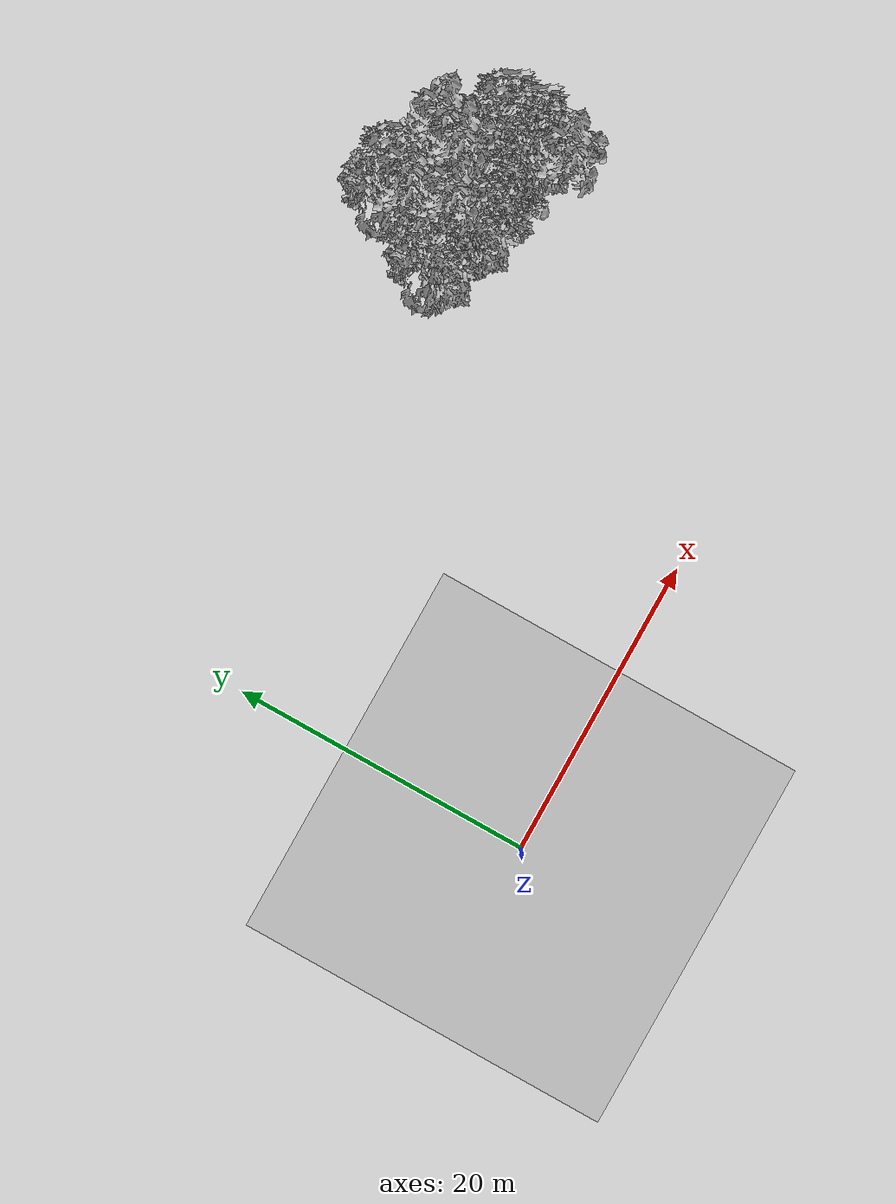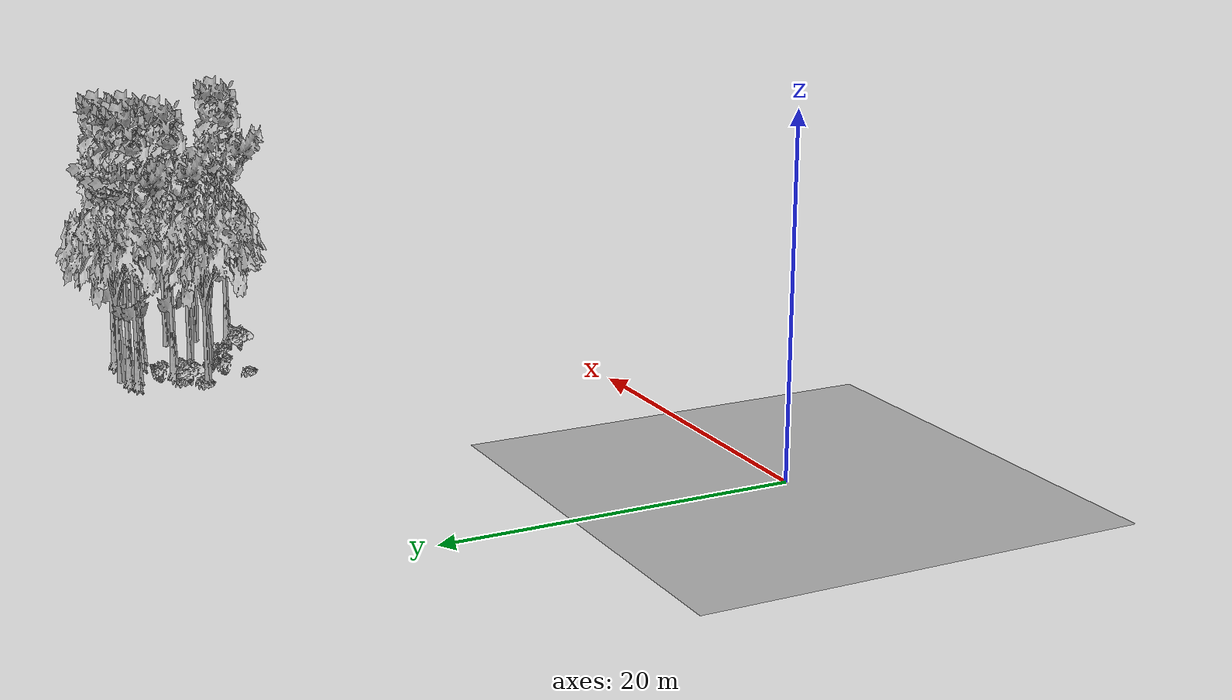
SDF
<sdf version="1.7">
 <world name="default">
  <model name="ground_plane">
   <static>1</static>
   <link name="link">
    <collision name="collision">
     <pose>-50 0 0 0 -0 0</pose>
     <geometry><plane><normal>0 0 1</normal><size>80 80</size></plane></geometry>
     <surface><contact><ode><min_depth>0.01</min_depth><max_vel>0</max_vel></ode></contact></surface>
    </collision>
    <visual name="grass">
     <cast_shadows>0</cast_shadows>
     <geometry>
      <mesh>
       <scale>0.46714285714285714 0.46714285714285714 0.1</scale>
       <uri>file://grass_plane/meshes/grass_plane.dae</uri>
      </mesh>
     </geometry>
    </visual>
   </link>
  </model>
  <model name="Tree 83">
   <static>1</static>
   <pose>32.19585348661583 27.203462785655944 0 1.57079 -0 0</pose>
   <link name="link">
    <collision name="collision">
     <geometry><mesh><scale>3.5 5 3.5</scale><uri>model://tree_2/meshes/tree_2.obj</uri></mesh></geometry>
    </collision>
    <visual name="visual">
     <geometry><mesh><scale>3.5 5 3.5</scale><uri>model://tree_2/meshes/tree_2.obj</uri></mesh></geometry>
    </visual>
   </link>
  </model>
  <model name="Tree 93">
   <static>1</static>
   <pose>29.53064979839708 22.51079197156176 0 1.57079 -0 0</pose>
   <link name="link">
    <collision name="collision">
     <geometry><mesh><scale>3.5 5 3.5</scale><uri>model://tree_2/meshes/tree_2.obj</uri></mesh></geometry>
    </collision>
    <visual name="visual">
     <geometry><mesh><scale>3.5 5 3.5</scale><uri>model://tree_2/meshes/tree_2.obj</uri></mesh></geometry>
    </visual>
   </link>
  </model>
  <model name="Tree 101">
   <static>1</static>
   <pose>32.56744201294197 26.58261140195208 0 1.57079 -0 0</pose>
   <link name="link">
    <collision name="collision">
     <geometry><mesh><scale>3.5 5 3.5</scale><uri>model://tree_9/meshes/tree_9.obj</uri></mesh></geometry>
    </collision>
    <visual name="visual">
     <geometry><mesh><scale>3.5 5 3.5</scale><uri>model://tree_9/meshes/tree_9.obj</uri></mesh></geometry>
    </visual>
   </link>
  </model>
  <model name="Tree 120">
   <static>1</static>
   <pose>31.903621425664042 26.2312704462461 0 1.57079 -0 0</pose>
   <link name="link">
    <collision name="collision">
     <geometry><mesh><scale>3.5 5 3.5</scale><uri>model://tree_9/meshes/tree_9.obj</uri></mesh></geometry>
    </collision>
    <visual name="visual">
     <geometry><mesh><scale>3.5 5 3.5</scale><uri>model://tree_9/meshes/tree_9.obj</uri></mesh></geometry>
    </visual>
   </link>
  </model>
  <model name="Tree 183">
   <static>1</static>
   <pose>36.63798282781558 26.455458530056262 0 1.57079 -0 0</pose>
   <link name="link">
    <collision name="collision">
     <geometry><mesh><scale>3.5 5 3.5</scale><uri>model://tree_9/meshes/tree_9.obj</uri></mesh></geometry>
    </collision>
    <visual name="visual">
     <geometry><mesh><scale>3.5 5 3.5</scale><uri>model://tree_9/meshes/tree_9.obj</uri></mesh></geometry>
    </visual>
   </link>
  </model>
  <model name="Tree 214">
   <static>1</static>
   <pose>32.902745397415984 23.70487769245596 0 1.57079 -0 0</pose>
   <link name="link">
    <collision name="collision">
     <geometry><mesh><scale>3.5 5 3.5</scale><uri>model://tree_9/meshes/tree_9.obj</uri></mesh></geometry>
    </collision>
    <visual name="visual">
     <geometry><mesh><scale>3.5 5 3.5</scale><uri>model://tree_9/meshes/tree_9.obj</uri></mesh></geometry>
    </visual>
   </link>
  </model>
  <model name="Tree 307">
   <static>1</static>
   <pose>38.49134180322396 18.54290691175305 0 1.57079 -0 0</pose>
   <link name="link">
    <collision name="collision">
     <geometry><mesh><scale>3.5 5 3.5</scale><uri>model://tree_9/meshes/tree_9.obj</uri></mesh></geometry>
    </collision>
    <visual name="visual">
     <geometry><mesh><scale>3.5 5 3.5</scale><uri>model://tree_9/meshes/tree_9.obj</uri></mesh></geometry>
    </visual>
   </link>
  </model>
  <model name="Tree 323">
   <static>1</static>
   <pose>35.91203484128803 24.89901466209936 0 1.57079 -0 0</pose>
   <link name="link">
    <collision name="collision">
     <geometry><mesh><scale>3.5 5 3.5</scale><uri>model://tree_9/meshes/tree_9.obj</uri></mesh></geometry>
    </collision>
    <visual name="visual">
     <geometry><mesh><scale>3.5 5 3.5</scale><uri>model://tree_9/meshes/tree_9.obj</uri></mesh></geometry>
    </visual>
   </link>
  </model>
  <model name="Tree 372">
   <static>1</static>
   <pose>34.68096268071592 22.101061105895106 0 1.57079 -0 0</pose>
   <link name="link">
    <collision name="collision">
     <geometry><mesh><scale>3.5 5 3.5</scale><uri>model://tree_2/meshes/tree_2.obj</uri></mesh></geometry>
    </collision>
    <visual name="visual">
     <geometry><mesh><scale>3.5 5 3.5</scale><uri>model://tree_2/meshes/tree_2.obj</uri></mesh></geometry>
    </visual>
   </link>
  </model>
  <model name="Tree 530">
   <static>1</static>
   <pose>38.53959008656307 20.63503892808278 0 1.57079 -0 0</pose>
   <link name="link">
    <collision name="collision">
     <geometry><mesh><scale>3.5 5 3.5</scale><uri>model://tree_2/meshes/tree_2.obj</uri></mesh></geometry>
    </collision>
    <visual name="visual">
     <geometry><mesh><scale>3.5 5 3.5</scale><uri>model://tree_2/meshes/tree_2.obj</uri></mesh></geometry>
    </visual>
   </link>
  </model>
  <model name="Tree 563">
   <static>1</static>
   <pose>32.5362947423707 21.49893913368792 0 1.57079 -0 0</pose>
   <link name="link">
    <collision name="collision">
     <geometry><mesh><scale>3.5 5 3.5</scale><uri>model://tree_2/meshes/tree_2.obj</uri></mesh></geometry>
    </collision>
    <visual name="visual">
     <geometry><mesh><scale>3.5 5 3.5</scale><uri>model://tree_2/meshes/tree_2.obj</uri></mesh></geometry>
    </visual>
   </link>
  </model>
  <model name="Tree 596">
   <static>1</static>
   <pose>38.47066600474875 22.59708136580855 0 1.57079 -0 0</pose>
   <link name="link">
    <collision name="collision">
     <geometry><mesh><scale>3.5 5 3.5</scale><uri>model://tree_2/meshes/tree_2.obj</uri></mesh></geometry>
    </collision>
    <visual name="visual">
     <geometry><mesh><scale>3.5 5 3.5</scale><uri>model://tree_2/meshes/tree_2.obj</uri></mesh></geometry>
    </visual>
   </link>
  </model>
  <model name="Bush 23">
   <static>1</static>
   <pose>35.360334657225366 18.634208972710944 0 1.57079 -0 0</pose>
   <link name="link">
    <collision name="collision">
     <geometry><mesh><scale>2 2 2</scale><uri>model://bush_1/meshes/bush_1.obj</uri></mesh></geometry>
     <surface><contact><collide_without_contact>false</collide_without_contact></contact></surface>
    </collision>
    <visual name="visual">
     <geometry><mesh><scale>2 2 2</scale><uri>model://bush_1/meshes/bush_1.obj</uri></mesh></geometry>
    </visual>
   </link>
  </model>
  <model name="Bush 58">
   <static>1</static>
   <pose>29.3391144168247 22.642714026423533 0 1.57079 -0 0</pose>
   <link name="link">
    <collision name="collision">
     <geometry><mesh><scale>2 2 2</scale><uri>model://bush_2/meshes/bush_2.obj</uri></mesh></geometry>
     <surface><contact><collide_without_contact>false</collide_without_contact></contact></surface>
    </collision>
    <visual name="visual">
     <geometry><mesh><scale>2 2 2</scale><uri>model://bush_2/meshes/bush_2.obj</uri></mesh></geometry>
    </visual>
   </link>
  </model>
  <model name="Bush 65">
   <static>1</static>
   <pose>29.951834199375853 22.40478114439371 0 1.57079 -0 0</pose>
   <link name="link">
    <collision name="collision">
     <geometry><mesh><scale>2 2 2</scale><uri>model://bush_5/meshes/bush_5.obj</uri></mesh></geometry>
     <surface><contact><collide_without_contact>false</collide_without_contact></contact></surface>
    </collision>
    <visual name="visual">
     <geometry><mesh><scale>2 2 2</scale><uri>model://bush_5/meshes/bush_5.obj</uri></mesh></geometry>
    </visual>
   </link>
  </model>
  <model name="Bush 91">
   <static>1</static>
   <pose>35.99542256902437 19.595748686892804 0 1.57079 -0 0</pose>
   <link name="link">
    <collision name="collision">
     <geometry><mesh><scale>2 2 2</scale><uri>model://bush_2/meshes/bush_2.obj</uri></mesh></geometry>
     <surface><contact><collide_without_contact>false</collide_without_contact></contact></surface>
    </collision>
    <visual name="visual">
     <geometry><mesh><scale>2 2 2</scale><uri>model://bush_2/meshes/bush_2.obj</uri></mesh></geometry>
    </visual>
   </link>
  </model>
  <model name="Bush 122">
   <static>1</static>
   <pose>29.976876139527576 22.68020367003796 0 1.57079 -0 0</pose>
   <link name="link">
    <collision name="collision">
     <geometry><mesh><scale>2 2 2</scale><uri>model://bush_2/meshes/bush_2.obj</uri></mesh></geometry>
     <surface><contact><collide_without_contact>false</collide_without_contact></contact></surface>
    </collision>
    <visual name="visual">
     <geometry><mesh><scale>2 2 2</scale><uri>model://bush_2/meshes/bush_2.obj</uri></mesh></geometry>
    </visual>
   </link>
  </model>
  <model name="Bush 192">
   <static>1</static>
   <pose>30.606050053369643 19.572567230867918 0 1.57079 -0 0</pose>
   <link name="link">
    <collision name="collision">
     <geometry><mesh><scale>2 2 2</scale><uri>model://bush_2/meshes/bush_2.obj</uri></mesh></geometry>
     <surface><contact><collide_without_contact>false</collide_without_contact></contact></surface>
    </collision>
    <visual name="visual">
     <geometry><mesh><scale>2 2 2</scale><uri>model://bush_2/meshes/bush_2.obj</uri></mesh></geometry>
    </visual>
   </link>
  </model>
  <model name="Bush 342">
   <static>1</static>
   <pose>30.957942650575816 21.054755457051527 0 1.57079 -0 0</pose>
   <link name="link">
    <collision name="collision">
     <geometry><mesh><scale>2 2 2</scale><uri>model://bush_4/meshes/bush_4.obj</uri></mesh></geometry>
     <surface><contact><collide_without_contact>false</collide_without_contact></contact></surface>
    </collision>
    <visual name="visual">
     <geometry><mesh><scale>2 2 2</scale><uri>model://bush_4/meshes/bush_4.obj</uri></mesh></geometry>
    </visual>
   </link>
  </model>
  <model name="Bush 403">
   <static>1</static>
   <pose>30.370979179885126 23.792803986060235 0 1.57079 -0 0</pose>
   <link name="link">
    <collision name="collision">
     <geometry><mesh><scale>2 2 2</scale><uri>model://bush_2/meshes/bush_2.obj</uri></mesh></geometry>
     <surface><contact><collide_without_contact>false</collide_without_contact></contact></surface>
    </collision>
    <visual name="visual">
     <geometry><mesh><scale>2 2 2</scale><uri>model://bush_2/meshes/bush_2.obj</uri></mesh></geometry>
    </visual>
   </link>
  </model>
  <model name="Bush 411">
   <static>1</static>
   <pose>31.181002530758633 25.04616429623465 0 1.57079 -0 0</pose>
   <link name="link">
    <collision name="collision">
     <geometry><mesh><scale>2 2 2</scale><uri>model://bush_4/meshes/bush_4.obj</uri></mesh></geometry>
     <surface><contact><collide_without_contact>false</collide_without_contact></contact></surface>
    </collision>
    <visual name="visual">
     <geometry><mesh><scale>2 2 2</scale><uri>model://bush_4/meshes/bush_4.obj</uri></mesh></geometry>
    </visual>
   </link>
  </model>
  <model name="Bush 449">
   <static>1</static>
   <pose>33.01867345810332 21.153050773009774 0 1.57079 -0 0</pose>
   <link name="link">
    <collision name="collision">
     <geometry><mesh><scale>2 2 2</scale><uri>model://bush_5/meshes/bush_5.obj</uri></mesh></geometry>
     <surface><contact><collide_without_contact>false</collide_without_contact></contact></surface>
    </collision>
    <visual name="visual">
     <geometry><mesh><scale>2 2 2</scale><uri>model://bush_5/meshes/bush_5.obj</uri></mesh></geometry>
    </visual>
   </link>
  </model>
  <model name="Bush 497">
   <static>1</static>
   <pose>29.733649335019905 23.530902807008125 0 1.57079 -0 0</pose>
   <link name="link">
    <collision name="collision">
     <geometry><mesh><scale>2 2 2</scale><uri>model://bush_1/meshes/bush_1.obj</uri></mesh></geometry>
     <surface><contact><collide_without_contact>false</collide_without_contact></contact></surface>
    </collision>
    <visual name="visual">
     <geometry><mesh><scale>2 2 2</scale><uri>model://bush_1/meshes/bush_1.obj</uri></mesh></geometry>
    </visual>
   </link>
  </model>
 </world>
</sdf>
